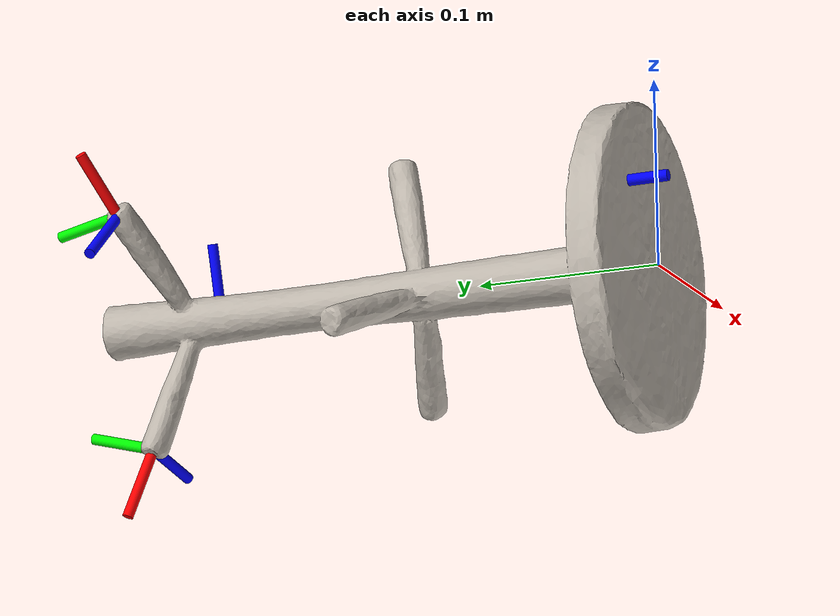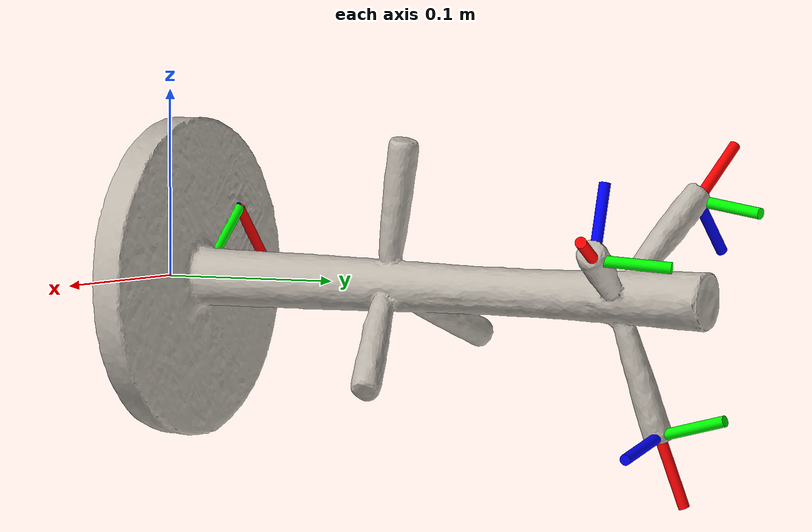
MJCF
<mujoco model="mugtree_with_tag">
  <compiler autolimits="true" angle="radian"/>
  <default>
    <default class="visual">
      <geom group="2" type="mesh" contype="0" conaffinity="0"/>
    </default>
    <default class="collision">
      <geom group="3" type="mesh"/>
    </default>
  </default>
  <asset>
    <texture type="2d" name="baked_mesh_570dd0b2_tex0" file="baked_mesh_570dd0b2_tex0.png"/>
    <material name="Texture" texture="baked_mesh_570dd0b2_tex0" specular="0.5" shininess="0.5"/>
    <mesh file="mugtree_with_tag.obj"/>
    <mesh file="mugtree_with_tag_collision_0.obj"/>
    <mesh file="mugtree_with_tag_collision_1.obj"/>
    <mesh file="mugtree_with_tag_collision_2.obj"/>
    <mesh file="mugtree_with_tag_collision_3.obj"/>
    <mesh file="mugtree_with_tag_collision_4.obj"/>
    <mesh file="mugtree_with_tag_collision_5.obj"/>
    <mesh file="mugtree_with_tag_collision_6.obj"/>
    <mesh file="mugtree_with_tag_collision_7.obj"/>
    <mesh file="mugtree_with_tag_collision_8.obj"/>
    <mesh file="mugtree_with_tag_collision_9.obj"/>
    <mesh file="mugtree_with_tag_collision_10.obj"/>
    <mesh file="mugtree_with_tag_collision_11.obj"/>
    <mesh file="mugtree_with_tag_collision_12.obj"/>
    <mesh file="mugtree_with_tag_collision_13.obj"/>
  </asset>
  <worldbody>
    <body name="mugtree_with_tag">
      <geom material="Texture" mesh="mugtree_with_tag" class="visual"/>
      <geom mesh="mugtree_with_tag_collision_0" rgba="0.7636778428128062 0.01630397529679939 0.6961396517976579 1" class="collision"/>
      <geom mesh="mugtree_with_tag_collision_1" rgba="0.19930765100079306 0.7779641023926657 0.17214771731622236 1" class="collision"/>
      <geom mesh="mugtree_with_tag_collision_2" rgba="0.7480290935971965 0.5918331551826382 0.2265456942420625 1" class="collision"/>
      <geom mesh="mugtree_with_tag_collision_3" rgba="0.4977137730335288 0.26799093190028467 0.31339889179379987 1" class="collision"/>
      <geom mesh="mugtree_with_tag_collision_4" rgba="0.6143034654968136 0.8472763611553608 0.1538090336955128 1" class="collision"/>
      <geom mesh="mugtree_with_tag_collision_5" rgba="0.7285338848725483 0.2263899903142762 0.1642652329962041 1" class="collision"/>
      <geom mesh="mugtree_with_tag_collision_6" rgba="0.8148786337009619 0.9265471344060775 0.2880511759317429 1" class="collision"/>
      <geom mesh="mugtree_with_tag_collision_7" rgba="0.2635195249229618 0.650974156624517 0.7033503265481881 1" class="collision"/>
      <geom mesh="mugtree_with_tag_collision_8" rgba="0.5270462973720319 0.146012678566954 0.42990488273165783 1" class="collision"/>
      <geom mesh="mugtree_with_tag_collision_9" rgba="0.730011631762798 0.8958315418599335 0.9207749157436739 1" class="collision"/>
      <geom mesh="mugtree_with_tag_collision_10" rgba="0.9327541348350308 0.48985638011703525 0.37079728014917324 1" class="collision"/>
      <geom mesh="mugtree_with_tag_collision_11" rgba="0.8435218470522604 0.6594079394416469 0.4636143281124947 1" class="collision"/>
      <geom mesh="mugtree_with_tag_collision_12" rgba="0.8757972088524745 0.29802190751889646 0.5305690837878593 1" class="collision"/>
      <geom mesh="mugtree_with_tag_collision_13" rgba="0.8543284967387288 0.8982437822724787 0.12458110919175136 1" class="collision"/>
    </body>
    <body name="tag" pos="-0.038 0.02 0.035" euler="1.5708 0 -2.3038">
      <!-- geoms for x,y,z axis as cylinder, with RGB color -->
      <geom type="cylinder" size="0.003 0.02" pos="0.02 0 0" rgba="1 0 0 1" material="Texture" euler="0 1.5708 0" class="visual"/>
      <geom type="cylinder" size="0.003 0.02" pos="0 0.02 0" rgba="0 1 0 1" material="Texture" euler="1.5708 0 0" class="visual"/>
      <geom type="cylinder" size="0.003 0.02" pos="0 0 0.02" rgba="0 0 1 1" material="Texture" class="visual"/>
    </body>

    <body name="tree1" pos="0.063 0.29 0.021" euler="0 -0.2967 0.2967">
      <!-- geoms for x,y,z axis as cylinder, with RGB color -->
      <geom type="cylinder" size="0.003 0.02" pos="0.02 0 0" rgba="1 0 0 1" material="Texture" euler="0 1.5708 0" class="visual"/>
      <geom type="cylinder" size="0.003 0.02" pos="0 0.02 0" rgba="0 1 0 1" material="Texture" euler="1.5708 0 0" class="visual"/>
      <geom type="cylinder" size="0.003 0.02" pos="0 0 0.02" rgba="0 0 1 1" material="Texture" class="visual"/>
    </body>

    <body name="tree2" pos="-0.063 0.285 0.045" euler="0 -2.35 0.2">
      <!-- geoms for x,y,z axis as cylinder, with RGB color -->
      <geom type="cylinder" size="0.003 0.02" pos="0.02 0 0" rgba="1 0 0 1" material="Texture" euler="0 1.5708 0" class="visual"/>
      <geom type="cylinder" size="0.003 0.02" pos="0 0.02 0" rgba="0 1 0 1" material="Texture" euler="1.5708 0 0" class="visual"/>
      <geom type="cylinder" size="0.003 0.02" pos="0 0 0.02" rgba="0 0 1 1" material="Texture" class="visual"/>
    </body>

    <body name="tree3" pos="-0.02 0.285 -0.075" euler="0 1.8 0.25">
      <!-- geoms for x,y,z axis as cylinder, with RGB color -->
      <geom type="cylinder" size="0.003 0.02" pos="0.02 0 0" rgba="1 0 0 1" material="Texture" euler="0 1.5708 0" class="visual"/>
      <geom type="cylinder" size="0.003 0.02" pos="0 0.02 0" rgba="0 1 0 1" material="Texture" euler="1.5708 0 0" class="visual"/>
      <geom type="cylinder" size="0.003 0.02" pos="0 0 0.02" rgba="0 0 1 1" material="Texture" class="visual"/>
    </body>

  </worldbody>
</mujoco>
